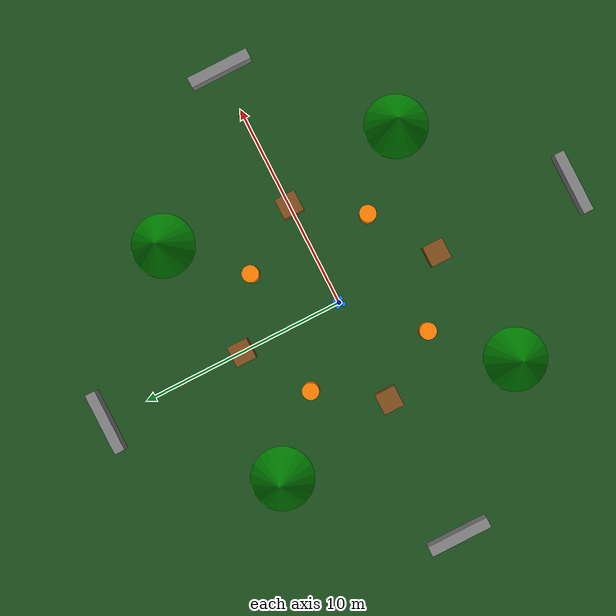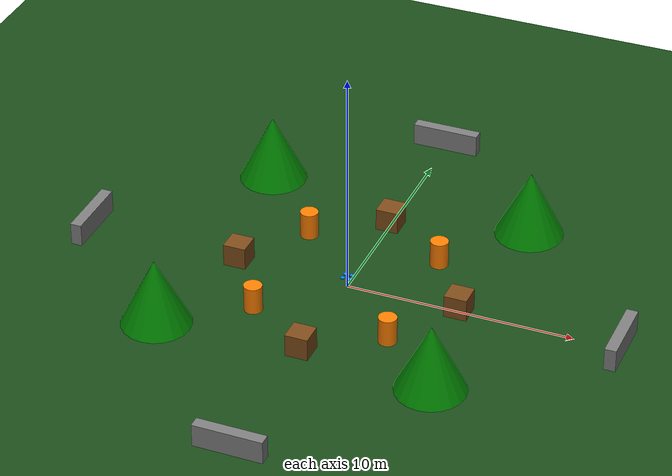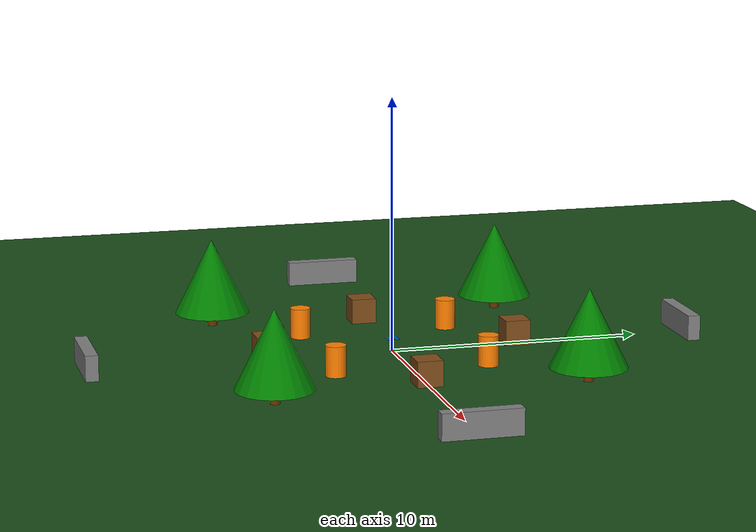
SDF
<?xml version="1.0" ?>
<sdf version="1.10">
    <world name="drone_office_world">
        <physics name="1ms" type="ignored">
            <max_step_size>0.001</max_step_size>
            <real_time_factor>1.0</real_time_factor>
        </physics>

        <plugin filename="gz-sim-physics-system" name="gz::sim::systems::Physics" />
        <plugin filename="gz-sim-user-commands-system" name="gz::sim::systems::UserCommands" />
        <plugin filename="gz-sim-scene-broadcaster-system" name="gz::sim::systems::SceneBroadcaster" />
        <plugin filename="gz-sim-sensors-system" name="gz::sim::systems::Sensors"><render_engine>ogre2</render_engine></plugin>

        <light type="directional" name="sun">
            <cast_shadows>true</cast_shadows>
            <pose>0 0 10 0 0 0</pose>
            <direction>-0.5 0.1 -0.9</direction>
        </light>

        <model name="ground_plane">
            <static>true</static>
            <link name="link">
                <collision name="collision">
                    <geometry><plane><normal>0 0 1</normal><size>25 25</size></plane></geometry>
                </collision>
                <visual name="visual">
                    <geometry><plane><normal>0 0 1</normal><size>25 25</size></plane></geometry>
                    <material><ambient>0.1 0.3 0.1 1</ambient><diffuse>0.1 0.3 0.1 1</diffuse></material>
                </visual>
            </link>
        </model>

        <include><uri>model://my_drone</uri><name>x3</name><pose>0 0 0.5 0 0 0</pose></include>

        <include><uri>model://my_barrier</uri><name>north_wall</name><pose>12 0 0.5 0 0 1.57</pose></include>
        <include><uri>model://my_barrier</uri><name>south_wall</name><pose>-12 0 0.5 0 0 1.57</pose></include>
        <include><uri>model://my_barrier</uri><name>east_wall</name><pose>0 12 0.5 0 0 0</pose></include>
        <include><uri>model://my_barrier</uri><name>west_wall</name><pose>0 -12 0.5 0 0 0</pose></include>

        <include><uri>model://my_tree</uri><name>tr1</name><pose>6 6 0 0 0 0</pose></include>
        <include><uri>model://my_tree</uri><name>tr2</name><pose>-6 6 0 0 0 0</pose></include>
        <include><uri>model://my_tree</uri><name>tr3</name><pose>6 -6 0 0 0 0</pose></include>
        <include><uri>model://my_tree</uri><name>tr4</name><pose>-6 -6 0 0 0 0</pose></include>

        <include><uri>model://my_barrel</uri><name>br1</name><pose>3 3 0.6 0 0 0</pose></include>
        <include><uri>model://my_barrel</uri><name>br2</name><pose>-3 -3 0.6 0 0 0</pose></include>
        <include><uri>model://my_barrel</uri><name>br3</name><pose>3 -3 0.6 0 0 0</pose></include>
        <include><uri>model://my_barrel</uri><name>br4</name><pose>-3 3 0.6 0 0 0</pose></include>

        <include><uri>model://my_crate</uri><name>c1</name><pose>0 5 0.5 0 0 0</pose></include>
        <include><uri>model://my_crate</uri><name>c2</name><pose>0 -5 0.5 0 0 0</pose></include>
        <include><uri>model://my_crate</uri><name>c3</name><pose>5 0 0.5 0 0 0</pose></include>
        <include><uri>model://my_crate</uri><name>c4</name><pose>-5 0 0.5 0 0 0</pose></include>

    </world>
</sdf>

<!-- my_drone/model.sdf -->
<sdf version="1.10">
  <model name="x3">
    <link name="base_link">
      <inertial>
        <mass>1.0</mass>
        <inertia>
          <ixx>0.01</ixx><ixy>0</ixy><ixz>0</ixz>
          <iyy>0.01</iyy><iyz>0</iyz><izz>0.02</izz>
        </inertia>
      </inertial>

      <visual name="body_visual">
        <geometry><box><size>0.2 0.1 0.05</size></box></geometry>
        <material><ambient>0.1 0.1 0.1 1</ambient><diffuse>0.1 0.1 0.1 1</diffuse></material>
      </visual>

      <visual name="rotor_0">
        <pose>0.15 0.15 0 0 0 0</pose>
        <geometry><cylinder><radius>0.1</radius><length>0.02</length></cylinder></geometry>
        <material><ambient>0 0.5 1 1</ambient><diffuse>0 0.5 1 1</diffuse></material>
      </visual>
      <visual name="rotor_1">
        <pose>-0.15 0.15 0 0 0 0</pose>
        <geometry><cylinder><radius>0.1</radius><length>0.02</length></cylinder></geometry>
        <material><ambient>0 0.5 1 1</ambient><diffuse>0 0.5 1 1</diffuse></material>
      </visual>
      <visual name="rotor_2">
        <pose>0.15 -0.15 0 0 0 0</pose>
        <geometry><cylinder><radius>0.1</radius><length>0.02</length></cylinder></geometry>
        <material><ambient>0 0.5 1 1</ambient><diffuse>0 0.5 1 1</diffuse></material>
      </visual>
      <visual name="rotor_3">
        <pose>-0.15 -0.15 0 0 0 0</pose>
        <geometry><cylinder><radius>0.1</radius><length>0.02</length></cylinder></geometry>
        <material><ambient>0 0.5 1 1</ambient><diffuse>0 0.5 1 1</diffuse></material>
      </visual>

     <collision name="collision">
  <geometry>
    <box><size>0.4 0.4 0.1</size></box>
  </geometry>
  <surface>
    <contact>
      <ode>
        <min_depth>0.001</min_depth>
        <max_vel>0</max_vel>
      </ode>
    </contact>
  </surface>
</collision>

      <sensor name="camera" type="camera">
        <pose>0.2 0 0 0 0 0</pose>
        <always_on>1</always_on>
        <update_rate>30</update_rate>
        <visualize>true</visualize>
        <topic>camera</topic>
      </sensor>
    </link>
    <plugin filename="gz-sim-velocity-control-system" name="gz::sim::systems::VelocityControl"/>
  </model>
</sdf>

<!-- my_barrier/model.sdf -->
<sdf version="1.10">
  <model name="my_barrier">
    <static>true</static>
    <link name="link">
      <collision name="collision">
        <geometry><box><size>3.0 0.5 1.0</size></box></geometry>
      </collision>
      <visual name="visual">
        <geometry><box><size>3.0 0.5 1.0</size></box></geometry>
        <material><ambient>0.5 0.5 0.5 1</ambient><diffuse>0.5 0.5 0.5 1</diffuse></material>
      </visual>
    </link>
  </model>
</sdf>

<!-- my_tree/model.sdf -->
<sdf version="1.10">
  <model name="my_tree">
    <static>true</static>
    <link name="link">
      <visual name="trunk">
        <geometry><cylinder><radius>0.2</radius><length>2.0</length></cylinder></geometry>
        <material><ambient>0.4 0.2 0 1</ambient><diffuse>0.4 0.2 0 1</diffuse></material>
      </visual>
      <collision name="trunk_col">
        <geometry><cylinder><radius>0.2</radius><length>2.0</length></cylinder></geometry>
      </collision>
      <visual name="leaves">
        <pose>0 0 2.0 0 0 0</pose>
        <geometry><cone><radius>1.5</radius><length>3.0</length></cone></geometry>
        <material><ambient>0 0.5 0 1</ambient><diffuse>0 0.5 0 1</diffuse></material>
      </visual>
    </link>
  </model>
</sdf>

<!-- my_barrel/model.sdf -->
<sdf version="1.10">
  <model name="my_barrel">
    <static>true</static>
    <link name="link">
      <collision name="collision">
        <geometry><cylinder><radius>0.4</radius><length>1.2</length></cylinder></geometry>
      </collision>
      <visual name="visual">
        <geometry><cylinder><radius>0.4</radius><length>1.2</length></cylinder></geometry>
        <material><ambient>1 0.5 0 1</ambient><diffuse>1 0.5 0 1</diffuse></material>
      </visual>
    </link>
  </model>
</sdf>

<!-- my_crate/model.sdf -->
<sdf version="1.10">
  <model name="my_crate">
    <static>true</static>
    <link name="link">
      <collision name="c"><geometry><box><size>1 1 1</size></box></geometry></collision>
      <visual name="v">
        <geometry><box><size>1 1 1</size></box></geometry>
        <material><ambient>0.5 0.3 0.1 1</ambient><diffuse>0.5 0.3 0.1 1</diffuse></material>
      </visual>
    </link>
  </model>
</sdf>
